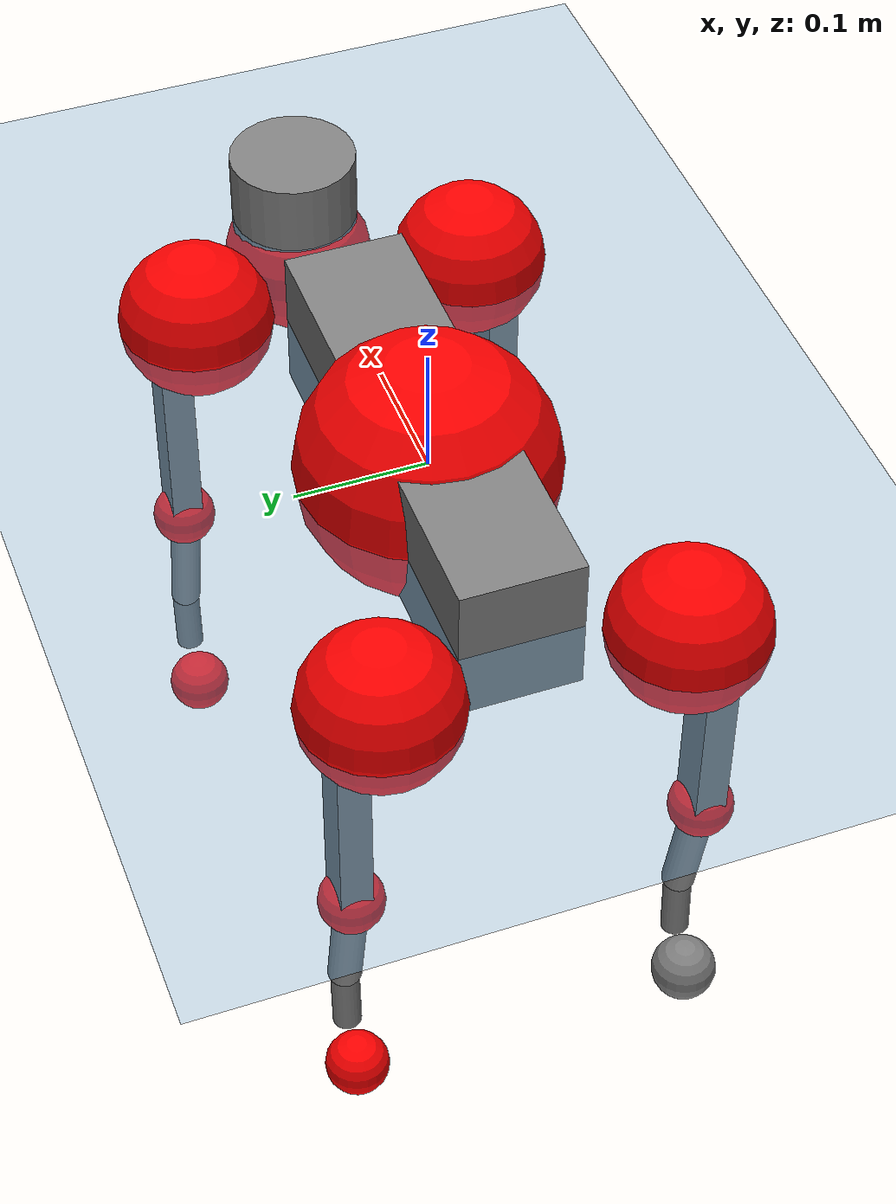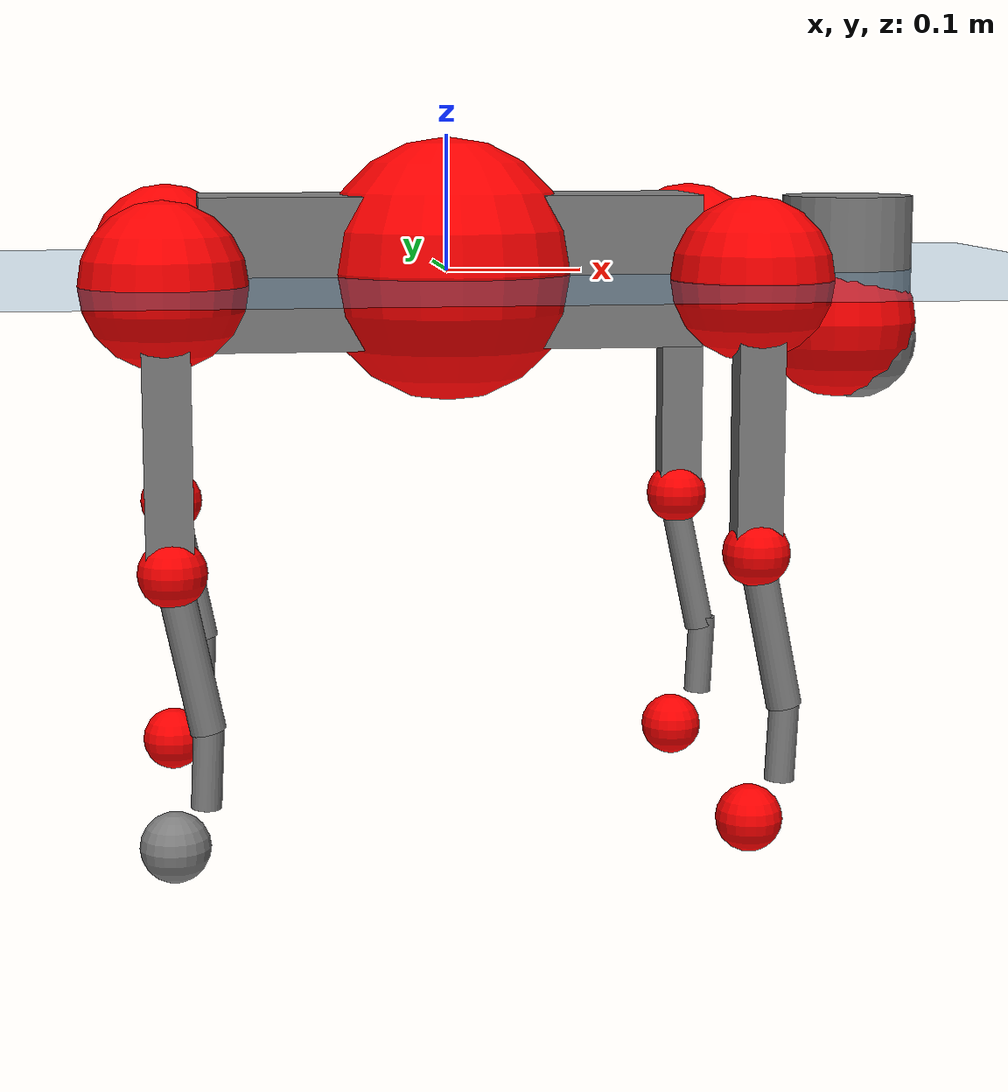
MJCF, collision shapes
<mujoco model="go2">
  <compiler angle="radian" assetdir="assets" balanceinertia="true" inertiafromgeom="false"/>

  <option timestep="0.005" density="1.2" viscosity="2e-05"/>

  <size nkey="1"/>

  <visual>
    <quality shadowsize="8192"/>
    <map shadowclip="0.5"/>
  </visual>

  <default>
    <default class="/">
      <geom contype="0" conaffinity="0" group="1" solref="-1000 -80"/>
      <site size="0.01 0.005 0.005" group="5"/>
      <general forcelimited="true" biastype="affine" gainprm="20" biasprm="0 -20 -0.5"/>
      <default class="go2">
        <joint armature="0.01" damping="0.01" frictionloss="0.2"/>
        <geom condim="1" margin="0.001"/>
        <default class="visual">
          <geom type="mesh" group="2"/>
        </default>
        <default class="collision">
          <geom group="3"/>
          <default class="foot">
            <geom size="0.022 0 0" condim="6" priority="1" friction="0.8 0.02 0.01" solimp="0.015 1 0.022"/>
          </default>
        </default>
        <default class="reward_collision_sphere">
          <geom group="5" rgba="1 0 0 1"/>
        </default>
      </default>
    </default>
  </default>

  <asset>
    <texture type="skybox" colorspace="auto" name="//unnamed_texture_0" builtin="gradient" rgb1="0.95 0.95 0.95" rgb2="0.95 0.95 0.95" width="100" height="600"/>
    <texture type="2d" colorspace="auto" name="texplane" builtin="checker" rgb1="0.345 0.575 0.748" rgb2="0.345 0.575 0.748" markrgb="1 1 1" width="512" height="512"/>
    <material name="MatPlane" class="/" texture="texplane" texuniform="true" texrepeat="2 2" specular="0.9"/>
    <material name="metal" class="/" rgba="0.9 0.95 0.95 1"/>
    <material name="black" class="/" rgba="0 0 0 1"/>
    <material name="white" class="/"/>
    <material name="gray" class="/" rgba="0.671705 0.692426 0.77427 1"/>
    <mesh name="base_0" class="/" file="base_0.obj"/>
    <mesh name="base_1" class="/" file="base_1.obj"/>
    <mesh name="base_2" class="/" file="base_2.obj"/>
    <mesh name="base_3" class="/" file="base_3.obj"/>
    <mesh name="base_4" class="/" file="base_4.obj"/>
    <mesh name="hip_0" class="/" file="hip_0.obj"/>
    <mesh name="hip_1" class="/" file="hip_1.obj"/>
    <mesh name="thigh_0" class="/" file="thigh_0.obj"/>
    <mesh name="thigh_1" class="/" file="thigh_1.obj"/>
    <mesh name="thigh_mirror_0" class="/" file="thigh_mirror_0.obj"/>
    <mesh name="thigh_mirror_1" class="/" file="thigh_mirror_1.obj"/>
    <mesh name="calf_0" class="/" file="calf_0.obj"/>
    <mesh name="calf_1" class="/" file="calf_1.obj"/>
    <mesh name="calf_mirror_0" class="/" file="calf_mirror_0.obj"/>
    <mesh name="calf_mirror_1" class="/" file="calf_mirror_1.obj"/>
    <mesh name="foot" class="/" file="foot.obj"/>
  </asset>

  <worldbody>
    <geom name="floor" class="/" size="100 100 0.125" type="plane" group="0" material="MatPlane"/>
    <light name="toplight_shadow" class="/" pos="0 0 5" dir="0.0990148 0.0990148 -0.990148" type="directional" ambient="0.04 0.04 0.04" diffuse="0.55 0.55 0.55" specular="0.12 0.12 0.12"/>
    <light name="toplight_fill" class="/" pos="0 0 5" dir="0.0990148 0.0990148 -0.990148" type="directional" castshadow="false" ambient="0.04 0.04 0.04" diffuse="0.3 0.3 0.3" specular="0.08 0.08 0.08"/>
    <body name="trunk" childclass="go2" pos="0.000317284 1.33846e-05 0.000836756" quat="1 5.61212e-06 -5.64852e-06 -4.79715e-07">
      <inertial pos="0.0232777 -0.00203371 -0.00458333" quat="0.000507906 0.711589 -0.000270804 0.702596" mass="6.3245" diaginertia="0.143417 0.0699156 0.0158739"/>
      <joint name="//unnamed_joint_0" type="free" armature="0" damping="0" frictionloss="0"/>
      <geom name="//unnamed_geom_1" class="visual" material="black" mesh="base_0"/>
      <geom name="//unnamed_geom_2" class="visual" material="black" mesh="base_1"/>
      <geom name="//unnamed_geom_3" class="visual" material="black" mesh="base_2"/>
      <geom name="//unnamed_geom_4" class="visual" material="white" mesh="base_3"/>
      <geom name="//unnamed_geom_5" class="visual" material="gray" mesh="base_4"/>
      <geom name="trunk_1" class="collision" size="0.183696 0.0456555 0.0556655" type="box"/>
      <geom name="trunk_2" class="collision" size="0.0488294 0.0439465" pos="0.305278 0 0.00919744" type="cylinder"/>
      <geom name="trunk_3" class="collision" size="0.0458996" pos="0.313847 0 -0.0551847"/>
      <geom name="//unnamed_geom_9" class="reward_collision_sphere" size="0.0976588"/>
      <geom name="//unnamed_geom_10" class="reward_collision_sphere" size="0.0585953" pos="0.299922 0 -0.0413885"/>
      <site name="imu" pos="-0.0300864 0.0011062 0.0399684" size="0.00976588"/>
      <camera name="track" pos="0 -1.87774 0" quat="0.707107 0.707107 0 0" mode="trackcom"/>
      <camera name="ego_camera" pos="0.334199 0 0.0413885" quat="-0.5 -0.5 0.5 0.5"/>
      <body name="FL_hip" pos="0.206386 0.0439394 0.000567817" quat="1 6.3794e-05 -8.25837e-05 5.47836e-05">
        <inertial pos="-0.00597037 0.00118681 0.000404601" quat="0.491748 0.502379 0.513277 0.492286" mass="0.628207" diaginertia="0.00123958 0.00043915 0.000315114"/>
        <joint name="FL_hip_joint" pos="0 0 0" axis="0.999999 -0.0013989 -0.000648757" stiffness="0.0136239" range="-1.03275 1.04676" armature="0.00959884" damping="0.0125222" frictionloss="0.196445"/>
        <geom name="//unnamed_geom_11" class="visual" material="metal" mesh="hip_0"/>
        <geom name="//unnamed_geom_12" class="visual" material="gray" mesh="hip_1"/>
        <geom name="//unnamed_geom_13" class="collision" size="0.044923 0.0195318" pos="0 0.0751094 0" quat="0.707107 0.707107 0 0" type="cylinder"/>
        <geom name="//unnamed_geom_14" class="reward_collision_sphere" size="0.0585953" pos="0 0.0657207 0"/>
        <body name="FL_thigh" pos="-0.000285086 0.0886671 0.000319372" quat="0.999999 0.000167173 0.00104226 0.000299658">
          <inertial pos="-0.00438005 -0.018562 -0.0305751" quat="0.830025 0.0832677 -0.0248342 0.550916" mass="1.06161" diaginertia="0.00822812 0.00436203 0.000576899"/>
          <joint name="FL_thigh_joint" pos="0 0 0" axis="0.00302191 0.999971 0.00698567" stiffness="0.0010226" range="-1.56886 3.45843" armature="0.010811" damping="0.00845074" frictionloss="0.201163"/>
          <geom name="//unnamed_geom_15" class="visual" material="metal" mesh="thigh_0"/>
          <geom name="//unnamed_geom_16" class="visual" material="gray" mesh="thigh_1"/>
          <geom name="//unnamed_geom_17" class="collision" size="0.104007 0.0119632 0.016602" pos="0 0 -0.0979528" quat="0.707107 0 0.707107 0" type="box"/>
          <body name="FL_calf" pos="-0.00128195 -0.000339493 -0.195849" quat="1 -8.01713e-05 -0.000261135 -1.96577e-05">
            <inertial pos="0.00540828 -0.000169699 -0.130368" quat="0.711445 0.000347188 -0.00912708 0.702683" mass="0.222786" diaginertia="0.00210353 0.00109395 3.48412e-05"/>
            <joint name="FL_calf_joint" pos="0 0 0" axis="0.0023623 0.999995 0.00217062" stiffness="0.00374832" range="-2.68119 -0.8189" armature="0.0101" damping="0" frictionloss="0.186603"/>
            <geom name="//unnamed_geom_18" class="visual" material="gray" mesh="calf_0"/>
            <geom name="//unnamed_geom_19" class="visual" material="black" mesh="calf_1"/>
            <geom name="FL_calf0" class="collision" size="0.0117191 0.0585953" pos="0.00856921 0 -0.0551847" quat="0.994493 0 -0.104807 0" type="cylinder"/>
            <geom name="//unnamed_geom_21" class="collision" size="0.0107425 0.0317391" pos="0.021423 0 -0.136122" quat="0.999688 0 0.0249974 0" type="cylinder"/>
            <geom name="//unnamed_geom_22" class="visual" pos="0 0 -0.195906" quat="1 0 0 0" material="black" mesh="foot"/>
            <geom name="FL_foot" class="foot" size="0.0174162" pos="-0.0021423 0 -0.195906"/>
            <geom name="//unnamed_geom_24" class="reward_collision_sphere" size="0.0244147"/>
            <geom name="//unnamed_geom_25" class="reward_collision_sphere" size="0.0244147" pos="-0.0021423 0 -0.195906"/>
            <site name="FL_foot" class="foot" pos="-0.0021423 0 -0.195906" size="0.00976588"/>
          </body>
        </body>
      </body>
      <body name="FR_hip" pos="0.205529 -0.042165 -0.000960688" quat="1 0.00011413 0.000103247 2.55313e-05">
        <inertial pos="-0.0062611 -0.00272748 0.000448936" quat="0.502289 0.50841 0.498083 0.491059" mass="0.636784" diaginertia="0.00123774 0.000434733 0.000310798"/>
        <joint name="FR_hip_joint" pos="0 0 0" axis="0.999989 -0.00436313 -0.00170308" range="-1.04034 1.07353" armature="0.0102682" damping="0.0170625" frictionloss="0.18847"/>
        <geom name="//unnamed_geom_26" class="visual" pos="0 1.66596e-10 7.14566e-09" quat="4.63268e-05 1 0 0" material="metal" mesh="hip_0"/>
        <geom name="//unnamed_geom_27" class="visual" pos="0 2.70073e-10 -1.76739e-08" quat="4.63268e-05 1 0 0" material="gray" mesh="hip_1"/>
        <geom name="//unnamed_geom_28" class="collision" size="0.044923 0.0195318" pos="0 -0.0751094 0" quat="0.707107 0.707107 0 0" type="cylinder"/>
        <geom name="//unnamed_geom_29" class="reward_collision_sphere" size="0.0585953" pos="0 -0.0657207 0"/>
        <body name="FR_thigh" pos="0.00026929 -0.0891583 -0.000302064" quat="1 2.0969e-07 1.31541e-07 -2.61668e-07">
          <inertial pos="-0.00475849 0.0212592 -0.0281929" quat="0.54882 -0.0212854 0.0816133 0.831674" mass="1.06316" diaginertia="0.00839198 0.00426548 0.000578926"/>
          <joint name="FR_thigh_joint" pos="0 0 0" axis="-0.00110607 -0.999998 0.00185004" stiffness="0.00995425" range="-3.48899 1.55288" armature="0.00908397" damping="0.0180037" frictionloss="0.198416"/>
          <geom name="//unnamed_geom_30" class="visual" material="metal" mesh="thigh_mirror_0"/>
          <geom name="//unnamed_geom_31" class="visual" material="gray" mesh="thigh_mirror_1"/>
          <geom name="//unnamed_geom_32" class="collision" size="0.104007 0.0119632 0.016602" pos="0 0 -0.0979528" quat="0.707107 0 0.707107 0" type="box"/>
          <body name="FR_calf" pos="0.000522234 0.000223705 -0.193933" quat="1 -1.21564e-05 7.92318e-05 -2.29738e-05">
            <inertial pos="0.00698259 0.000717699 -0.130083" quat="0.700538 -0.00345476 -0.00104668 0.713606" mass="0.230732" diaginertia="0.00218456 0.00109922 3.60767e-05"/>
            <joint name="FR_calf_joint" pos="0 0 0" axis="-0.00313483 -0.999994 -0.00120564" range="0.820521 2.70963" armature="0.00962075" damping="0.00232568" frictionloss="0.205147"/>
            <geom name="//unnamed_geom_33" class="visual" material="gray" mesh="calf_mirror_0"/>
            <geom name="//unnamed_geom_34" class="visual" material="black" mesh="calf_mirror_1"/>
            <geom name="FR_calf0" class="collision" size="0.0126956 0.0585953" pos="0.0107115 0 -0.0551847" quat="0.995004 0 -0.0998334 0" type="cylinder"/>
            <geom name="//unnamed_geom_36" class="collision" size="0.0107425 0.0317391" pos="0.021423 0 -0.136122" quat="0.999688 0 0.0249974 0" type="cylinder"/>
            <geom name="//unnamed_geom_37" class="visual" pos="0 0 -0.195906" quat="1 0 0 0" material="black" mesh="foot"/>
            <geom name="FR_foot" class="foot" size="0.0205073" pos="-0.0021423 0 -0.195906"/>
            <geom name="//unnamed_geom_39" class="reward_collision_sphere" size="0.0244147"/>
            <geom name="//unnamed_geom_40" class="reward_collision_sphere" size="0.0244147" pos="-0.0021423 0 -0.195906"/>
            <site name="FR_foot" class="foot" pos="-0.0021423 0 -0.195906" size="0.00976588"/>
          </body>
        </body>
      </body>
      <body name="RL_hip" pos="-0.207188 0.0428018 0.00197598" quat="1 -0.000210963 0.000561629 -0.000105808">
        <inertial pos="0.00564031 0.00205051 -0.000131209" quat="0.505213 0.496943 0.497833 0.499971" mass="0.621857" diaginertia="0.0012627 0.000444914 0.000317661"/>
        <joint name="RL_hip_joint" pos="0 0 0" axis="-0.999811 0.00366905 -0.0191104" stiffness="0.00827141" range="-1.02307 1.06824" armature="0.00988024" damping="0.0153076" frictionloss="0.201509"/>
        <geom name="//unnamed_geom_41" class="visual" pos="-1.319e-09 0 -2.58554e-07" quat="4.63268e-05 0 1 0" material="metal" mesh="hip_0"/>
        <geom name="//unnamed_geom_42" class="visual" pos="-2.13825e-09 0 -2.293e-07" quat="4.63268e-05 0 1 0" material="gray" mesh="hip_1"/>
        <geom name="//unnamed_geom_43" class="collision" size="0.044923 0.0195318" pos="0 0.0751094 0" quat="0.707107 0.707107 0 0" type="cylinder"/>
        <geom name="//unnamed_geom_44" class="reward_collision_sphere" size="0.0585953" pos="0 0.0657207 0"/>
        <body name="RL_thigh" pos="-0.000283864 0.0907152 0.000826812" quat="1 0.000778159 5.93786e-05 0.000392474">
          <inertial pos="-0.00376959 -0.0183557 -0.0311189" quat="0.829206 0.0822754 -0.0186935 0.552538" mass="1.04701" diaginertia="0.00846782 0.00423673 0.000589522"/>
          <joint name="RL_thigh_joint" pos="0 0 0" axis="0.00737268 0.999968 0.0031909" stiffness="0.00279005" range="-0.533047 4.54122" armature="0.00971589" damping="0.0126391" frictionloss="0.20125"/>
          <geom name="//unnamed_geom_45" class="visual" material="metal" mesh="thigh_0"/>
          <geom name="//unnamed_geom_46" class="visual" material="gray" mesh="thigh_1"/>
          <geom name="//unnamed_geom_47" class="collision" size="0.104007 0.0119632 0.016602" pos="0 0 -0.0979528" quat="0.707107 0 0.707107 0" type="box"/>
          <body name="RL_calf" pos="-0.000281996 -0.000930688 -0.195138" quat="1 -0.000180524 -0.000103397 0.000139577">
            <inertial pos="0.00650649 0.000666779 -0.130363" quat="0.70972 0.000833465 -0.00508912 0.704465" mass="0.227811" diaginertia="0.00210036 0.00106564 3.47792e-05"/>
            <joint name="RL_calf_joint" pos="0 0 0" axis="0.00532098 0.999954 0.00798029" stiffness="0.00747601" range="-2.68053 -0.839946" armature="0.0108247" damping="0" frictionloss="0.197256"/>
            <geom name="//unnamed_geom_48" class="visual" material="gray" mesh="calf_0"/>
            <geom name="//unnamed_geom_49" class="visual" material="black" mesh="calf_1"/>
            <geom name="RL_calf0" class="collision" size="0.0126956 0.0585953" pos="0.0107115 0 -0.0551847" quat="0.995004 0 -0.0998334 0" type="cylinder"/>
            <geom name="//unnamed_geom_51" class="collision" size="0.0107425 0.0317391" pos="0.021423 0 -0.136122" quat="0.999688 0 0.0249974 0" type="cylinder"/>
            <geom name="//unnamed_geom_52" class="visual" pos="0 0 -0.195906" quat="1 0 0 0" material="black" mesh="foot"/>
            <geom name="RL_foot" class="foot" size="0.0194518" pos="-0.0021423 0 -0.195906"/>
            <geom name="//unnamed_geom_54" class="reward_collision_sphere" size="0.0244147"/>
            <geom name="//unnamed_geom_55" class="reward_collision_sphere" size="0.0244147" pos="-0.0021423 0 -0.195906"/>
            <site name="RL_foot" class="foot" pos="-0.0021423 0 -0.195906" size="0.00976588"/>
          </body>
        </body>
      </body>
      <body name="RR_hip" pos="-0.208861 -0.0446598 -0.00153874" quat="0.999999 0.00106552 0.000141065 -0.000372993">
        <inertial pos="0.00598126 -0.0011206 -0.000258833" quat="0.498907 0.496522 0.498311 0.506206" mass="0.639239" diaginertia="0.00126059 0.000434707 0.000328313"/>
        <joint name="RR_hip_joint" pos="0 0 0" axis="-1 0.000377276 0.000889238" stiffness="0.00192722" range="-1.04751 1.04721" armature="0.0105837" damping="0.00584631" frictionloss="0.192003"/>
        <geom name="//unnamed_geom_56" class="visual" pos="1.31442e-09 1.66596e-10 -2.65699e-07" quat="2.14617e-09 4.63268e-05 4.63268e-05 -1" material="metal" mesh="hip_0"/>
        <geom name="//unnamed_geom_57" class="visual" pos="2.14958e-09 2.70073e-10 -2.11626e-07" quat="2.14617e-09 4.63268e-05 4.63268e-05 -1" material="gray" mesh="hip_1"/>
        <geom name="//unnamed_geom_58" class="collision" size="0.044923 0.0195318" pos="0 -0.0751094 0" quat="0.707107 0.707107 0 0" type="cylinder"/>
        <geom name="//unnamed_geom_59" class="reward_collision_sphere" size="0.0585953" pos="0 -0.0657207 0"/>
        <body name="RR_thigh" pos="0.000651079 -0.0895758 -0.00010133" quat="1 0.000423636 6.62158e-05 -0.000514052">
          <inertial pos="-0.00352812 0.0205054 -0.0299611" quat="0.551538 -0.0215811 0.0839162 0.829637" mass="1.05802" diaginertia="0.0082994 0.0042838 0.000576708"/>
          <joint name="RR_thigh_joint" pos="0 0 0" axis="0.00105992 -0.999967 -0.00802398" stiffness="0.00077885" range="-4.53591 0.568778" armature="0.0087675" damping="0.0165844" frictionloss="0.191548"/>
          <geom name="//unnamed_geom_60" class="visual" material="metal" mesh="thigh_mirror_0"/>
          <geom name="//unnamed_geom_61" class="visual" material="gray" mesh="thigh_mirror_1"/>
          <geom name="//unnamed_geom_62" class="collision" size="0.104007 0.0119632 0.016602" pos="0 0 -0.0979528" quat="0.707107 0 0.707107 0" type="box"/>
          <body name="RR_calf" pos="0.00126113 -0.000809969 -0.196636" quat="1 0.000230502 -0.000199753 -6.59205e-05">
            <inertial pos="0.00727802 0.00122788 -0.130459" quat="0.703897 -0.00410918 0.00189969 0.710288" mass="0.224442" diaginertia="0.00207952 0.00105474 3.46966e-05"/>
            <joint name="RR_calf_joint" pos="0 0 0" axis="0.00159825 -0.999997 -0.0019534" range="0.866759 2.70908" armature="0.00939983" damping="0.0112719" frictionloss="0.188984"/>
            <geom name="//unnamed_geom_63" class="visual" material="gray" mesh="calf_mirror_0"/>
            <geom name="//unnamed_geom_64" class="visual" material="black" mesh="calf_mirror_1"/>
            <geom name="RR_calf0" class="collision" size="0.0126956 0.0585953" pos="0.0107115 0 -0.0551847" quat="0.995004 0 -0.0998334 0" type="cylinder"/>
            <geom name="//unnamed_geom_66" class="collision" size="0.0107425 0.0317391" pos="0.021423 0 -0.136122" quat="0.999688 0 0.0249974 0" type="cylinder"/>
            <geom name="//unnamed_geom_67" class="visual" pos="0 0 -0.195906" quat="1 0 0 0" material="black" mesh="foot"/>
            <geom name="RR_foot" class="foot" size="0.0250911" pos="-0.0021423 0 -0.195906"/>
            <geom name="//unnamed_geom_69" class="reward_collision_sphere" size="0.0244147"/>
            <geom name="//unnamed_geom_70" class="reward_collision_sphere" size="0.0244147" pos="-0.0021423 0 -0.195906"/>
            <site name="RR_foot" class="foot" pos="-0.0021423 0 -0.195906" size="0.00976588"/>
          </body>
        </body>
      </body>
    </body>
  </worldbody>

  <contact>
    <pair class="/" geom1="floor" geom2="FL_foot" name="//unnamed_contact_0"/>
    <pair class="/" geom1="floor" geom2="FR_foot" name="//unnamed_contact_1"/>
    <pair class="/" geom1="floor" geom2="RL_foot" name="//unnamed_contact_2"/>
    <pair class="/" geom1="floor" geom2="RR_foot" name="//unnamed_contact_3"/>
  </contact>

  <actuator>
    <general name="FL_hip" class="/" joint="FL_hip_joint" forcerange="-22.2775 22.2775" gainprm="19.6001" biasprm="0 -19.6001 -0.490514"/>
    <general name="FL_thigh" class="/" joint="FL_thigh_joint" forcerange="-23.0701 23.0701" gainprm="19.6001" biasprm="0 -19.6001 -0.490514"/>
    <general name="FL_calf" class="/" joint="FL_calf_joint" forcerange="-44.422 44.422" gainprm="19.6001" biasprm="0 -19.6001 -0.490514"/>
    <general name="FR_hip" class="/" joint="FR_hip_joint" forcerange="-23.7794 23.7794" gainprm="19.6001" biasprm="0 -19.6001 -0.490514"/>
    <general name="FR_thigh" class="/" joint="FR_thigh_joint" forcerange="-23.1627 23.1627" gainprm="19.6001" biasprm="0 -19.6001 -0.490514"/>
    <general name="FR_calf" class="/" joint="FR_calf_joint" forcerange="-43.3902 43.3902" gainprm="19.6001" biasprm="0 -19.6001 -0.490514"/>
    <general name="RL_hip" class="/" joint="RL_hip_joint" forcerange="-23.9589 23.9589" gainprm="19.6001" biasprm="0 -19.6001 -0.490514"/>
    <general name="RL_thigh" class="/" joint="RL_thigh_joint" forcerange="-23.4549 23.4549" gainprm="19.6001" biasprm="0 -19.6001 -0.490514"/>
    <general name="RL_calf" class="/" joint="RL_calf_joint" forcerange="-42.7586 42.7586" gainprm="19.6001" biasprm="0 -19.6001 -0.490514"/>
    <general name="RR_hip" class="/" joint="RR_hip_joint" forcerange="-23.9088 23.9088" gainprm="19.6001" biasprm="0 -19.6001 -0.490514"/>
    <general name="RR_thigh" class="/" joint="RR_thigh_joint" forcerange="-22.2907 22.2907" gainprm="19.6001" biasprm="0 -19.6001 -0.490514"/>
    <general name="RR_calf" class="/" joint="RR_calf_joint" forcerange="-47.1836 47.1836" gainprm="19.6001" biasprm="0 -19.6001 -0.490514"/>
  </actuator>

  <sensor>
    <gyro site="imu" name="imu_angular_velocity"/>
    <velocimeter site="imu" name="imu_linear_velocity"/>
    <framelinvel objtype="site" objname="FL_foot" name="FL_foot_global_linear_velocity"/>
    <framelinvel objtype="site" objname="FR_foot" name="FR_foot_global_linear_velocity"/>
    <framelinvel objtype="site" objname="RL_foot" name="RL_foot_global_linear_velocity"/>
    <framelinvel objtype="site" objname="RR_foot" name="RR_foot_global_linear_velocity"/>
  </sensor>

  <keyframe>
    <key name="home" qpos="0 0 0.325 1 0 0 0 0.1 0.8 -1.5 -0.1 -0.8 1.5 -0.1 0.8 -1.5 0.1 -0.8 1.5"/>
  </keyframe>
</mujoco>
